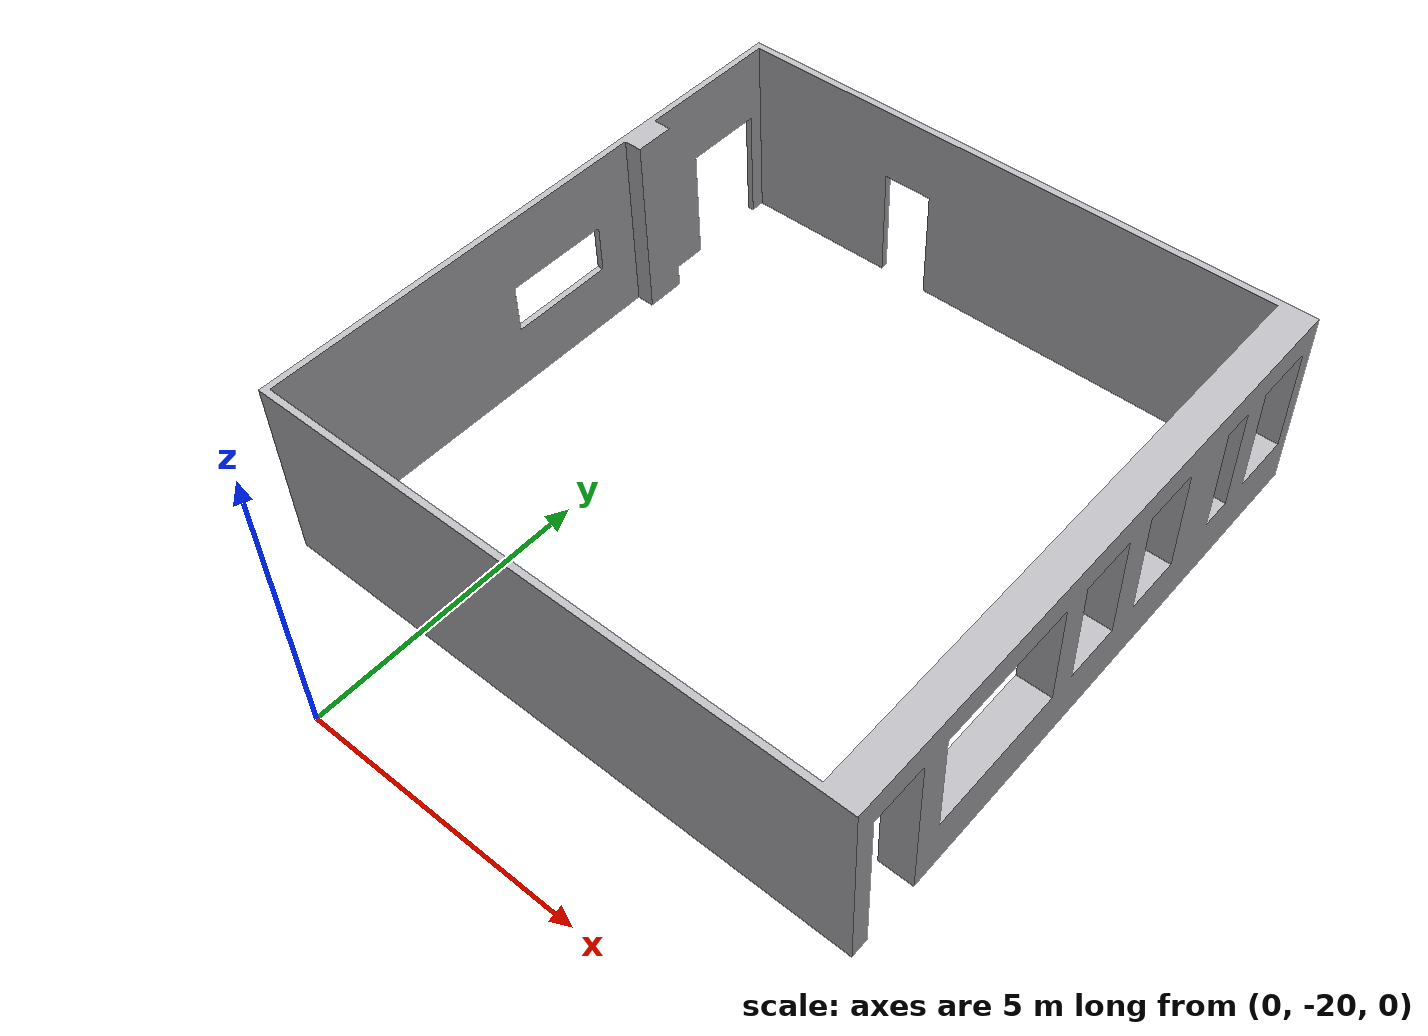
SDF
<?xml version="1.0"?>
<sdf version="1.9">
  <model name="room_315">
    <static>true</static>
    <link name="room_315_link">
      <visual name="room_315_visual">
        <pose>0 0 0 0 0 0</pose>
        <geometry>
          <mesh>
            <uri>model://room_315/meshes/315_room.stl</uri>
          </mesh>
        </geometry>
        <material>
          <ambient>0.72 0.72 0.74 1.0</ambient>
          <diffuse>0.72 0.72 0.74 1.0</diffuse>
          <specular>0.08 0.08 0.08 1.0</specular>
          <emissive>0.0 0.0 0.0 0.0</emissive>
        </material>
      </visual>
      <collision name="room_315_collision">
        <pose>0 0 0 0 0 0</pose>
        <geometry>
          <mesh>
            <uri>model://room_315/meshes/315_room.stl</uri>
          </mesh>
        </geometry>
      </collision>
    </link>
  </model>
</sdf>
